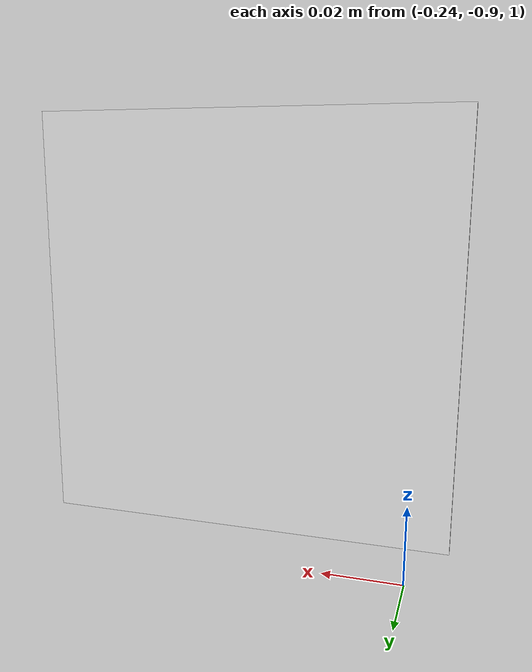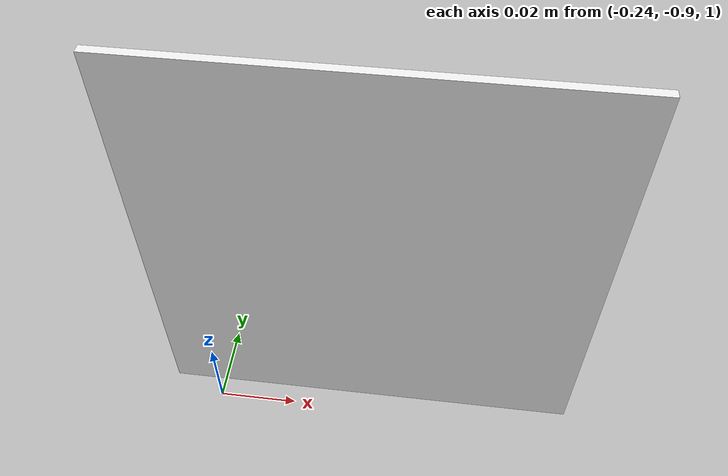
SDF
<?xml version="1.0" ?>
<sdf version="1.6">
  <model name="aruco_marker_board">
    <static>true</static>
    <pose>-0.2 -0.9 1.06 0 0 0</pose>
    <link name="marker_link">
      <inertial>
        <mass>0.01</mass>
        <inertia>
          <ixx>0.0001</ixx><ixy>0</ixy><ixz>0</ixz>
          <iyy>0.0001</iyy><iyz>0</iyz>
          <izz>0.0001</izz>
        </inertia>
      </inertial>
      <visual name="marker_vis">
        <geometry>
          <box>
            <size>0.1 0.002 0.1</size>
          </box>
        </geometry>
        <material>
          <ambient>0.9 0.9 0.9 1</ambient>
          <diffuse>0.9 0.9 0.9 1</diffuse>
        </material>
      </visual>
      <collision name="marker_col">
        <geometry>
          <box>
            <size>0.1 0.002 0.1</size>
          </box>
        </geometry>
      </collision>
    </link>
  </model>
</sdf>
